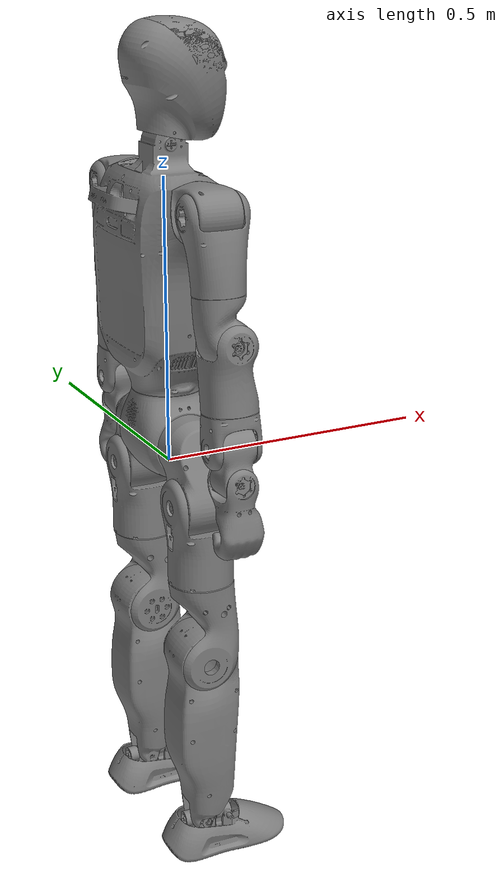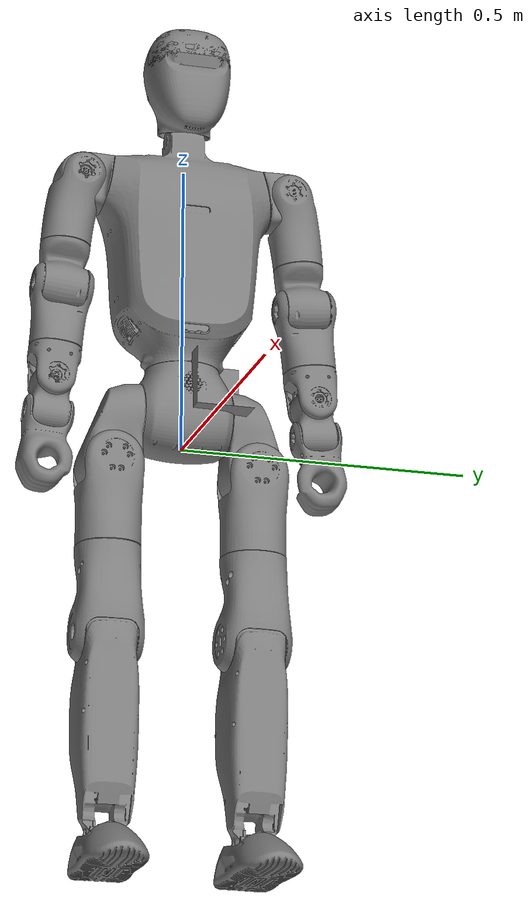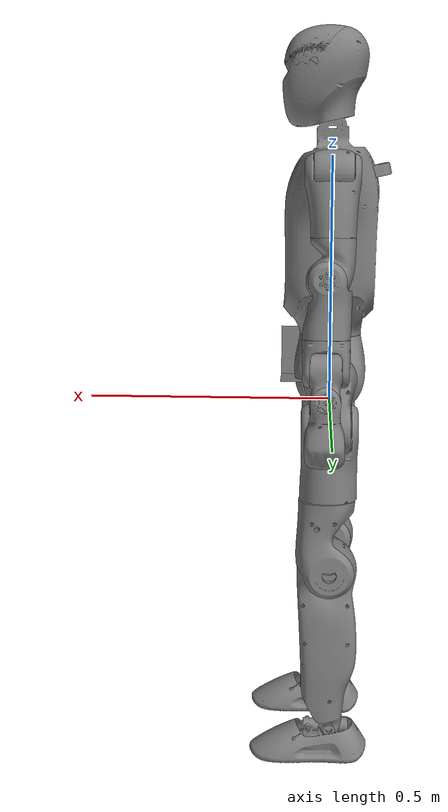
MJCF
<mujoco model="n3">
  <compiler angle="radian" meshdir="../meshes"/>
  <default>
    <joint damping="0.001" armature="0.01" frictionloss="0.1"/>
    <default class="n3_collision">
      <geom group="3" rgba=".2 .6 .2 .3" type="capsule" contype="1" conaffinity="1"/>
    </default>
    <default class="foot_collision">
      <geom type="mesh" group="3" contype="1" conaffinity="1" condim="3"
            friction="1.0 0.02 0.005" solref="0.002 1" solimp="0.99 0.999 0.00001"
            rgba="0.1 0.7 0.1 0.35"/>
    </default>
  </default>

  <asset>
    <mesh name="base_link" file="base_link.STL"/>
    <mesh name="head_pitch_link" file="head_pitch_link.STL"/>
    <mesh name="head_yaw_link" file="head_yaw_link.STL"/>
    <mesh name="l_ankle_pitch_link" file="l_ankle_pitch_link.STL"/>
    <mesh name="l_ankle_roll_link" file="l_ankle_roll_link.STL"/>
    <mesh name="l_arm_pitch_link" file="l_arm_pitch_link.STL"/>
    <mesh name="l_arm_roll_link" file="l_arm_roll_link.STL"/>
    <mesh name="l_arm_yaw_link" file="l_arm_yaw_link.STL"/>
    <mesh name="l_elbow_pitch_link" file="l_elbow_pitch_link.STL"/>
    <mesh name="l_hand_pitch_link" file="l_hand_pitch_link.STL"/>
    <mesh name="l_hand_roll_link" file="l_hand_roll_link.STL"/>
    <mesh name="l_hand_yaw_link" file="l_hand_yaw_link.STL"/>
    <mesh name="l_hip_pitch_link" file="l_hip_pitch_link.STL"/>
    <mesh name="l_hip_roll_link" file="l_hip_roll_link.STL"/>
    <mesh name="l_hip_yaw_link" file="l_hip_yaw_link.STL"/>
    <mesh name="l_knee_pitch_link" file="l_knee_pitch_link.STL"/>
    <mesh name="r_ankle_pitch_link" file="r_ankle_pitch_link.STL"/>
    <mesh name="r_ankle_roll_link" file="r_ankle_roll_link.STL"/>
    <mesh name="r_arm_pitch_link" file="r_arm_pitch_link.STL"/>
    <mesh name="r_arm_roll_link" file="r_arm_roll_link.STL"/>
    <mesh name="r_arm_yaw_link" file="r_arm_yaw_link.STL"/>
    <mesh name="r_elbow_pitch_link" file="r_elbow_pitch_link.STL"/>
    <mesh name="r_hand_pitch_link" file="r_hand_pitch_link.STL"/>
    <mesh name="r_hand_roll_link" file="r_hand_roll_link.STL"/>
    <mesh name="r_hand_yaw_link" file="r_hand_yaw_link.STL"/>
    <mesh name="r_hip_pitch_link" file="r_hip_pitch_link.STL"/>
    <mesh name="r_hip_roll_link" file="r_hip_roll_link.STL"/>
    <mesh name="r_hip_yaw_link" file="r_hip_yaw_link.STL"/>
    <mesh name="r_knee_pitch_link" file="r_knee_pitch_link.STL"/>
    <mesh name="waist_yaw_link" file="waist_yaw_link.STL"/>
  </asset>

  <worldbody>
    <body name="base_link">
      <inertial pos="8.000000e-05 2.000000e-05 8.350000e-02" mass="6.421460e+00" fullinertia="0.0345357 0.0237377 0.0199784 4.23068e-06 -1.23401e-05 -2.63362e-06"/>
      <joint name="root" type="free"/>
      <geom type="mesh" contype="0" conaffinity="0" group="1" density="0" mesh="base_link"/>
      <geom name="base_link_collision" class="n3_collision" size="0.055" fromto="0 -0.06 0.09 0 0.06 0.09"/>
      <body name="l_hip_pitch_link" pos="0 0.071 0.05215">
        <joint name="l_hip_pitch_joint" pos="0 0 0" axis="0 1 0" range="-2.4435 2.4435"/>
        <inertial pos="3.190000e-03 4.673000e-02 -6.550000e-02" mass="2.427780e+00" fullinertia="0.0066733 0.00626816 0.00274217 -5.77766e-05 0.000197029 0.00106716"/>
        <geom type="mesh" contype="0" conaffinity="0" group="1" density="0" mesh="l_hip_pitch_link"/>
        <geom name="l_hip_pitch_link_collision" class="n3_collision" size="0.03" fromto="0 0.01 -0.02 0 0.05 -0.09"/>
        <body name="l_hip_roll_link" pos="0 0.054 -0.0899">
          <joint name="l_hip_roll_joint" pos="0 0 0" axis="1 0 0" range="-0.69813 1.5708"/>
          <inertial pos="1.520000e-03 7.000000e-05 -8.638000e-02" mass="2.086730e+00" fullinertia="0.00452134 0.00502661 0.00307371 5.0145e-07 -0.000366374 -1.46082e-06"/>
          <geom type="mesh" contype="0" conaffinity="0" group="1" density="0" mesh="l_hip_roll_link"/>
          <geom name="l_hip_roll_link_collision" class="n3_collision" size="0.045" fromto="0 0 -0.01 0 0 -0.13"/>
          <body name="l_hip_yaw_link" pos="0 0 -0.1269">
            <joint name="l_hip_yaw_joint" pos="0 0 0" axis="0 0 1" range="-1.57 1.57"/>
            <inertial pos="8.630000e-03 -3.640000e-03 -7.533000e-02" mass="1.869360e+00" fullinertia="0.00639342 0.00591581 0.00238125 -6.90169e-05 0.000185015 -0.000668768"/>
            <geom type="mesh" contype="0" conaffinity="0" group="1" density="0" mesh="l_hip_yaw_link"/>
            <geom name="l_hip_yaw_link_collision" class="n3_collision" size="0.05" fromto="0 0 -0.01 0 0 -0.16"/>
            <body name="l_knee_pitch_link" pos="0 0 -0.1631">
              <joint name="l_knee_pitch_joint" pos="0 0 0" axis="0 1 0" range="0 2.2689"/>
              <inertial pos="-3.910000e-03 -2.100000e-04 -1.064100e-01" mass="5.167440e+00" fullinertia="0.0543785 0.0555877 0.00737416 -9.08514e-05 0.000712301 9.86593e-05"/>
              <geom type="mesh" contype="0" conaffinity="0" group="1" density="0" mesh="l_knee_pitch_link"/>
              <geom name="l_knee_pitch_link_collision" class="n3_collision" size="0.042" fromto="0 0 -0.02 0 0 -0.32"/>
              <body name="l_ankle_pitch_link" pos="0 0 -0.34">
                <joint name="l_ankle_pitch_joint" pos="0 0 0" axis="0 1 0" range="-0.8727 0.8727"/>
                <inertial pos="2.193000e-02 1.030000e-03 -3.510000e-02" mass="8.933600e-01" fullinertia="0.00101538 0.00332563 0.00330499 -7.5318e-05 0.000285337 8.622e-06"/>
                <geom type="mesh" contype="0" conaffinity="0" group="1" density="0" mesh="l_ankle_pitch_link"/>
                <body name="l_ankle_roll_link" pos="0 0 0">
                  <joint name="l_ankle_roll_joint" pos="0 0 0" axis="1 0 0" range="-0.1745 0.1745"/>
                  <inertial pos="2.193000e-02 1.030000e-03 -3.510000e-02" mass="8.933600e-01" fullinertia="0.00101538 0.00332563 0.00330499 -7.5318e-05 0.000285337 8.622e-06"/>
                  <geom type="mesh" contype="0" conaffinity="0" group="1" density="0" mesh="l_ankle_roll_link"/>
                  <geom name="l_foot_collision" class="foot_collision" mesh="l_ankle_roll_link"/>
                </body>
              </body>
            </body>
          </body>
        </body>
      </body>
      <body name="r_hip_pitch_link" pos="0 -0.071 0.05215">
        <joint name="r_hip_pitch_joint" pos="0 0 0" axis="0 1 0" range="-2.4435 2.4435"/>
        <inertial pos="3.190000e-03 -4.673000e-02 -6.550000e-02" mass="2.427780e+00" fullinertia="0.00667323 0.0062681 0.00274219 5.77766e-05 0.000197037 -0.00106699"/>
        <geom type="mesh" contype="0" conaffinity="0" group="1" density="0" mesh="r_hip_pitch_link"/>
        <geom name="r_hip_pitch_link_collision" class="n3_collision" size="0.03" fromto="0 -0.01 -0.02 0 -0.05 -0.09"/>
        <body name="r_hip_roll_link" pos="0 -0.054 -0.0899">
          <joint name="r_hip_roll_joint" pos="0 0 0" axis="1 0 0" range="-1.5708 0.69813"/>
          <inertial pos="1.520000e-03 -7.000000e-05 -8.638000e-02" mass="2.086730e+00" fullinertia="0.00452134 0.00502661 0.00307371 -5.0145e-07 -0.000366374 1.46082e-06"/>
          <geom type="mesh" contype="0" conaffinity="0" group="1" density="0" mesh="r_hip_roll_link"/>
          <geom name="r_hip_roll_link_collision" class="n3_collision" size="0.045" fromto="0 0 -0.01 0 0 -0.13"/>
          <body name="r_hip_yaw_link" pos="0 0 -0.1269">
            <joint name="r_hip_yaw_joint" pos="0 0 0" axis="0 0 1" range="-1.57 1.57"/>
            <inertial pos="6.400000e-03 3.640000e-03 -7.531000e-02" mass="1.869280e+00" fullinertia="0.00639308 0.00591554 0.0023811 6.90105e-05 0.000185155 0.000668574"/>
            <geom type="mesh" contype="0" conaffinity="0" group="1" density="0" mesh="r_hip_yaw_link"/>
            <geom name="r_hip_yaw_link_collision" class="n3_collision" size="0.05" fromto="0 0 -0.01 0 0 -0.16"/>
            <body name="r_knee_pitch_link" pos="0 0 -0.1631">
              <joint name="r_knee_pitch_joint" pos="0 0 0" axis="0 1 0" range="0 2.2689"/>
              <inertial pos="-3.920000e-03 2.100000e-04 -1.064100e-01" mass="5.167500e+00" fullinertia="0.0544351 0.0555881 0.00743129 8.40359e-05 0.000699954 -0.00046486"/>
              <geom type="mesh" contype="0" conaffinity="0" group="1" density="0" mesh="r_knee_pitch_link"/>
              <geom name="r_knee_pitch_link_collision" class="n3_collision" size="0.042" fromto="0 0 -0.02 0 0 -0.32"/>
              <body name="r_ankle_pitch_link" pos="0 0 -0.34">
                <joint name="r_ankle_pitch_joint" pos="0 0 0" axis="0 1 0" range="-0.8727 0.8727"/>
                <inertial pos="2.930000e-02 -1.020000e-03 -3.533000e-02" mass="8.930000e-01" fullinertia="0.00101489 0.00332504 0.00330416 7.53752e-05 0.000285147 -8.5361e-06"/>
                <geom type="mesh" contype="0" conaffinity="0" group="1" density="0" mesh="r_ankle_pitch_link"/>
                <body name="r_ankle_roll_link" pos="0 0 0">
                  <joint name="r_ankle_roll_joint" pos="0 0 0" axis="1 0 0" range="-0.1745 0.1745"/>
                  <inertial pos="2.193000e-02 -1.030000e-03 -3.510000e-02" mass="8.933600e-01" fullinertia="0.00101538 0.00332563 0.00330499 7.5318e-05 0.000285337 -8.622e-06"/>
                  <geom type="mesh" contype="0" conaffinity="0" group="1" density="0" mesh="r_ankle_roll_link"/>
                  <geom name="r_foot_collision" class="foot_collision" mesh="r_ankle_roll_link"/>
                </body>
              </body>
            </body>
          </body>
        </body>
      </body>
      <body name="waist_yaw_link" pos="0 0 0.17965">
        <joint name="waist_yaw_joint" pos="0 0 0" axis="0 0 1" range="-1.5707 1.5707"/>
        <inertial pos="-6.950000e-03 1.040000e-03 1.772000e-01" mass="1.142757e+01" fullinertia="0.148224 0.121704 0.0713348 -0.000689782 -0.00258061 -0.000202995"/>
        <geom type="mesh" contype="0" conaffinity="0" group="1" density="0" mesh="waist_yaw_link"/>
        <geom name="waist_yaw_link_collision" class="n3_collision" size="0.078" fromto="-0.01 -0.065 0.05 -0.01 0.065 0.05"/>
        <geom name="waist_yaw_link_collision2" class="n3_collision" size="0.08" fromto="-0.01 -0.065 0.15 -0.01 0.065 0.15"/>
        <geom name="waist_yaw_link_collision3" class="n3_collision" size="0.075" fromto="-0.01 -0.06 0.25 -0.01 0.06 0.25"/>
        <body name="head_pitch_link" pos="0.001 0 0.37605">
          <joint name="head_pitch_joint" pos="0 0 0" axis="0 1 0" range="-0.43633 0.61087"/>
          <inertial pos="-1.700000e-04 1.150000e-03 2.246000e-02" mass="1.636900e-01" fullinertia="0.000160838 8.38658e-05 0.000118206 -3.678e-08 3.4811e-07 4.4913e-06"/>
          <geom type="mesh" contype="0" conaffinity="0" group="1" density="0" mesh="head_pitch_link"/>
          <body name="head_yaw_link" pos="0 0 0.054">
            <joint name="head_yaw_joint" pos="0 0 0" axis="0 0 1" range="-1.5707 1.5707"/>
            <inertial pos="1.989000e-02 -4.000000e-05 3.819000e-02" mass="8.932200e-01" fullinertia="0.0028749 0.00350923 0.00244167 -5.629e-08 4.86611e-05 1.9777e-06"/>
            <geom type="mesh" contype="0" conaffinity="0" group="1" density="0" mesh="head_yaw_link"/>
            <geom name="head_yaw_link_collision" class="n3_collision" size="0.05" fromto="0.02 0 0 0.04 0 0.09"/>
          </body>
        </body>
        <body name="l_arm_pitch_link" pos="0 0.1175 0.27604" quat="0.996195 0.0871543 0 0">
          <joint name="l_arm_pitch_joint" pos="0 0 0" axis="0 1 0" range="-3.1416 2.3562"/>
          <inertial pos="-3.040000e-03 5.945000e-02 -1.000000e-05" mass="8.874700e-01" fullinertia="0.000824344 0.000699601 0.000881689 1.41907e-05 1.20339e-06 1.01427e-06"/>
          <geom type="mesh" contype="0" conaffinity="0" group="1" density="0" mesh="l_arm_pitch_link"/>
          <geom name="l_arm_pitch_link_collision" class="n3_collision" size="0.032" fromto="0 0.03 0 0 0.08 0"/>
          <body name="l_arm_roll_link" pos="0 0.066 0">
            <joint name="l_arm_roll_joint" pos="0 0 0" axis="1 0 0" range="0 2.18"/>
            <inertial pos="4.200000e-04 4.900000e-03 -7.442000e-02" mass="7.280900e-01" fullinertia="0.00132021 0.00155181 0.00076916 -3.8092e-07 -1.63071e-05 -5.19316e-06"/>
            <geom type="mesh" contype="0" conaffinity="0" group="1" density="0" mesh="l_arm_roll_link"/>
            <geom name="l_arm_roll_link_collision" class="n3_collision" size="0.04" fromto="0 0 0.02 0 0 -0.19"/>
            <body name="l_arm_yaw_link" pos="0 -0.0052402 -0.20332" quat="0.999048 -0.0436192 0 0">
              <joint name="l_arm_yaw_joint" pos="0 0 0" axis="0 0 1" range="-1.5708 1.5708"/>
              <inertial pos="6.660000e-03 -4.490000e-03 1.028000e-02" mass="8.833700e-01" fullinertia="0.00108355 0.0010225 0.0006995 1.14827e-05 0.000106898 -4.02139e-05"/>
              <geom type="mesh" contype="0" conaffinity="0" group="1" density="0" mesh="l_arm_yaw_link"/>
              <geom name="l_arm_yaw_link_collision" class="n3_collision" size="0.036" fromto="0 0 -0.02 0 0 -0.06"/>
              <body name="l_elbow_pitch_link" pos="0.01 0 0">
                <joint name="l_elbow_pitch_joint" pos="0 0 0" axis="0 1 0" range="-2.1817 0"/>
                <inertial pos="-1.720000e-03 4.100000e-04 -6.707000e-02" mass="7.048900e-01" fullinertia="0.00122981 0.00106639 0.00071343 -2.04793e-06 3.93873e-05 -8.9146e-07"/>
                <geom type="mesh" contype="0" conaffinity="0" group="1" density="0" mesh="l_elbow_pitch_link"/>
                <geom name="l_elbow_pitch_link_collision" class="n3_collision" size="0.035" fromto="0 0 0.02 0 0 -0.16"/>
                <body name="l_hand_yaw_link" pos="0 0 -0.17">
                  <joint name="l_hand_yaw_joint" pos="0 0 0" axis="0 0 1" range="-1.57 1.57"/>
                  <inertial pos="2.550000e-03 1.400000e-04 2.914000e-02" mass="2.034100e-01" fullinertia="0.000213142 0.000324441 0.000274587 7.427e-08 8.96342e-06 5.2711e-07"/>
                  <geom type="mesh" contype="0" conaffinity="0" group="1" density="0" mesh="l_hand_yaw_link"/>
                  <geom name="l_hand_yaw_link_collision" class="n3_collision" size="0.03" fromto="0 0 -0.02 0 0 -0.05"/>
                  <body name="l_hand_roll_link" pos="0 0 0">
                    <joint name="l_hand_roll_joint" pos="0 0 0" axis="1 0 0" range="-1.4835 1.4835"/>
                    <inertial pos="-2.330000e-03 -6.800000e-04 -2.775000e-02" mass="7.873300e-01" fullinertia="0.00103282 0.00104098 0.000417649 1.20983e-06 5.31431e-05 -2.21064e-05"/>
                    <geom type="mesh" contype="0" conaffinity="0" group="1" density="0" mesh="l_hand_roll_link"/>
                    <body name="l_hand_pitch_link" pos="0 0 -0.058">
                      <joint name="l_hand_pitch_joint" pos="0 0 0" axis="0 1 0" range="-1.3963 1.3963"/>
                      <inertial pos="1.680000e-03 5.620000e-03 -6.804000e-02" mass="5.018400e-01" fullinertia="0.00100643 0.000886843 0.00044427 2.52505e-05 2.44811e-06 -1.43126e-05"/>
                      <geom type="mesh" contype="0" conaffinity="0" group="1" density="0" mesh="l_hand_pitch_link"/>
                      <geom name="l_hand_pitch_link_collision" class="n3_collision" size="0.032" fromto="0 0 -0.01 0 0 -0.11"/>
                    </body>
                  </body>
                </body>
              </body>
            </body>
          </body>
        </body>
        <body name="r_arm_pitch_link" pos="0 -0.1175 0.27604" quat="0.996195 -0.0871543 0 0">
          <joint name="r_arm_pitch_joint" pos="0 0 0" axis="0 1 0" range="-3.1416 2.3562"/>
          <inertial pos="-3.070000e-03 -5.945000e-02 1.000000e-05" mass="8.810000e-01" fullinertia="0.000815201 0.000692049 0.000871678 -1.4527e-05 8.5113e-07 -4.54e-08"/>
          <geom type="mesh" contype="0" conaffinity="0" group="1" density="0" mesh="r_arm_pitch_link"/>
          <geom name="r_arm_pitch_link_collision" class="n3_collision" size="0.032" fromto="0 -0.03 0 0 -0.08 0"/>
          <body name="r_arm_roll_link" pos="0 -0.066 0">
            <joint name="r_arm_roll_joint" pos="0 0 0" axis="1 0 0" range="-2.18 0"/>
            <inertial pos="4.200000e-04 -4.900000e-03 -7.442000e-02" mass="7.280900e-01" fullinertia="0.00132023 0.00155178 0.000769159 3.6603e-07 -1.63411e-05 5.20895e-06"/>
            <geom type="mesh" contype="0" conaffinity="0" group="1" density="0" mesh="r_arm_roll_link"/>
            <geom name="r_arm_roll_link_collision" class="n3_collision" size="0.04" fromto="0 0 0.02 0 0 -0.19"/>
            <body name="r_arm_yaw_link" pos="0 0.0052402 -0.20332" quat="0.999048 0.0436192 0 0">
              <joint name="r_arm_yaw_joint" pos="0 0 0" axis="0 0 1" range="-1.5708 1.5708"/>
              <inertial pos="6.660000e-03 4.480000e-03 1.028000e-02" mass="8.834600e-01" fullinertia="0.00108379 0.00102271 0.000699541 -1.14153e-05 0.000106885 4.03616e-05"/>
              <geom type="mesh" contype="0" conaffinity="0" group="1" density="0" mesh="r_arm_yaw_link"/>
              <geom name="r_arm_yaw_link_collision" class="n3_collision" size="0.036" fromto="0 0 -0.02 0 0 -0.06"/>
              <body name="r_elbow_pitch_link" pos="0.01 0 0">
                <joint name="r_elbow_pitch_joint" pos="0 0 0" axis="0 1 0" range="-2.1817 0"/>
                <inertial pos="-1.720000e-03 -4.100000e-04 -6.707000e-02" mass="7.048900e-01" fullinertia="0.00122978 0.00106643 0.000713438 2.03354e-06 3.93915e-05 8.8908e-07"/>
                <geom type="mesh" contype="0" conaffinity="0" group="1" density="0" mesh="r_elbow_pitch_link"/>
                <geom name="r_elbow_pitch_link_collision" class="n3_collision" size="0.035" fromto="0 0 0.02 0 0 -0.16"/>
                <body name="r_hand_yaw_link" pos="0 0 -0.17">
                  <joint name="r_hand_yaw_joint" pos="0 0 0" axis="0 0 1" range="-1.5708 1.5708"/>
                  <inertial pos="2.550000e-03 -1.400000e-04 2.914000e-02" mass="2.034100e-01" fullinertia="0.000213138 0.000324413 0.000274577 -7.867e-08 8.95345e-06 -5.2094e-07"/>
                  <geom type="mesh" contype="0" conaffinity="0" group="1" density="0" mesh="r_hand_yaw_link"/>
                  <geom name="r_hand_yaw_link_collision" class="n3_collision" size="0.03" fromto="0 0 -0.02 0 0 -0.05"/>
                  <body name="r_hand_roll_link" pos="0 0 0">
                    <joint name="r_hand_roll_joint" pos="0 0 0" axis="1 0 0" range="-1.4835 1.4835"/>
                    <inertial pos="-2.330000e-03 6.800000e-04 -2.775000e-02" mass="7.873200e-01" fullinertia="0.00103282 0.00104098 0.000417649 -1.20735e-06 5.31428e-05 2.21063e-05"/>
                    <geom type="mesh" contype="0" conaffinity="0" group="1" density="0" mesh="r_hand_roll_link"/>
                    <body name="r_hand_pitch_link" pos="0 0 -0.058">
                      <joint name="r_hand_pitch_joint" pos="0 0 0" axis="0 1 0" range="-1.3963 1.3963"/>
                      <inertial pos="1.680000e-03 -5.620000e-03 -6.804000e-02" mass="5.017900e-01" fullinertia="0.0010063 0.000886702 0.000444249 -2.52588e-05 2.44852e-06 1.42734e-05"/>
                      <geom type="mesh" contype="0" conaffinity="0" group="1" density="0" mesh="r_hand_pitch_link"/>
                      <geom name="r_hand_pitch_link_collision" class="n3_collision" size="0.032" fromto="0 0 -0.01 0 0 -0.11"/>
                    </body>
                  </body>
                </body>
              </body>
            </body>
          </body>
        </body>
      </body>
    </body>
  </worldbody>
  <contact>
    <exclude body1="base_link" body2="waist_yaw_link"/>
    <exclude body1="base_link" body2="l_hip_pitch_link"/>
    <exclude body1="base_link" body2="r_hip_pitch_link"/>
    <exclude body1="base_link" body2="l_hip_roll_link"/>
    <exclude body1="base_link" body2="r_hip_roll_link"/>
    <exclude body1="waist_yaw_link" body2="l_hip_pitch_link"/>
    <exclude body1="waist_yaw_link" body2="r_hip_pitch_link"/>
    <exclude body1="waist_yaw_link" body2="head_yaw_link"/>
    <exclude body1="l_hip_pitch_link" body2="l_hip_roll_link"/>
    <exclude body1="l_hip_roll_link" body2="l_knee_pitch_link"/>
    <exclude body1="l_knee_pitch_link" body2="l_ankle_roll_link"/>
    <exclude body1="r_hip_pitch_link" body2="r_hip_roll_link"/>
    <exclude body1="r_hip_roll_link" body2="r_knee_pitch_link"/>
    <exclude body1="r_knee_pitch_link" body2="r_ankle_roll_link"/>
    <exclude body1="waist_yaw_link" body2="l_arm_roll_link"/>
    <exclude body1="l_arm_pitch_link" body2="l_arm_roll_link"/>
    <exclude body1="l_arm_roll_link" body2="l_arm_yaw_link"/>
    <exclude body1="l_arm_yaw_link" body2="l_elbow_pitch_link"/>
    <exclude body1="l_arm_roll_link" body2="l_elbow_pitch_link"/>
    <exclude body1="l_elbow_pitch_link" body2="l_hand_yaw_link"/>
    <exclude body1="l_hand_yaw_link" body2="l_hand_roll_link"/>
    <exclude body1="l_hand_yaw_link" body2="l_hand_pitch_link"/>
    <exclude body1="l_elbow_pitch_link" body2="l_hand_pitch_link"/>
    <exclude body1="waist_yaw_link" body2="r_arm_roll_link"/>
    <exclude body1="r_arm_pitch_link" body2="r_arm_roll_link"/>
    <exclude body1="r_arm_roll_link" body2="r_arm_yaw_link"/>
    <exclude body1="r_arm_yaw_link" body2="r_elbow_pitch_link"/>
    <exclude body1="r_arm_roll_link" body2="r_elbow_pitch_link"/>
    <exclude body1="r_elbow_pitch_link" body2="r_hand_yaw_link"/>
    <exclude body1="r_hand_yaw_link" body2="r_hand_roll_link"/>
    <exclude body1="r_hand_yaw_link" body2="r_hand_pitch_link"/>
    <exclude body1="r_elbow_pitch_link" body2="r_hand_pitch_link"/>
    <exclude body1="l_hip_yaw_link" body2="l_knee_pitch_link"/>
    <exclude body1="r_hip_yaw_link" body2="r_knee_pitch_link"/>
  </contact>
</mujoco>
